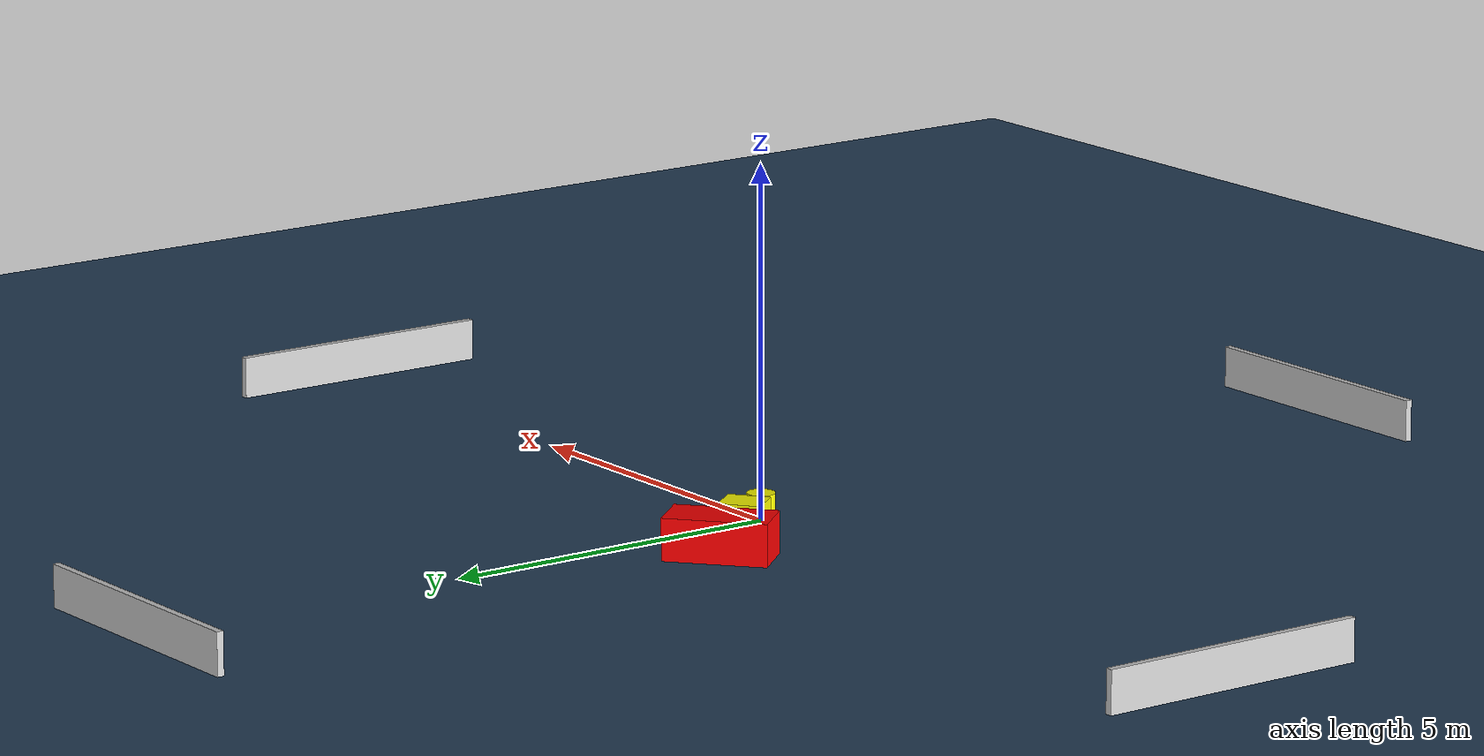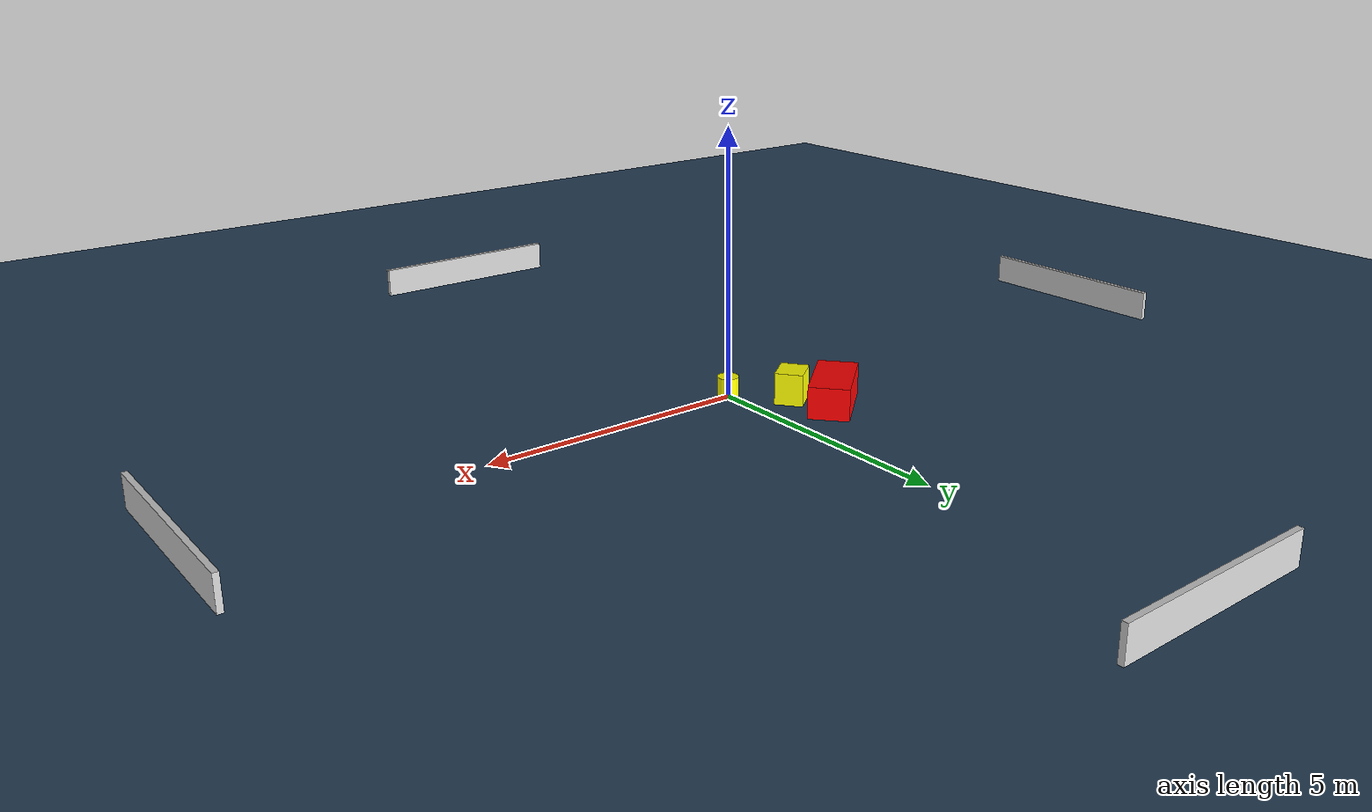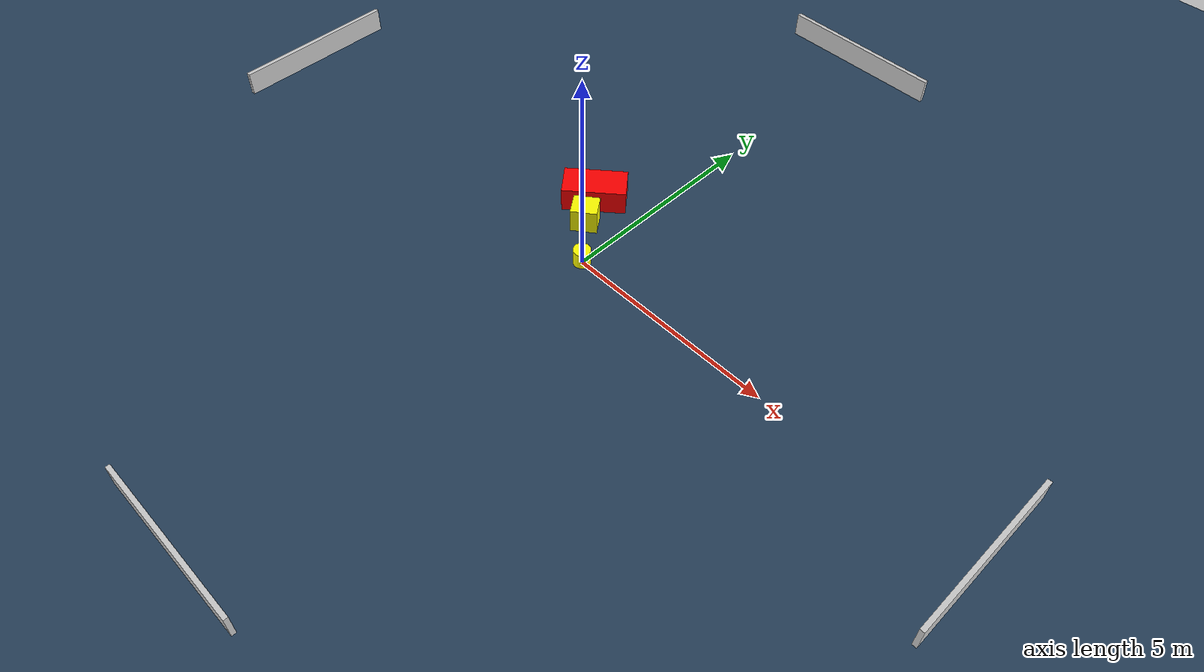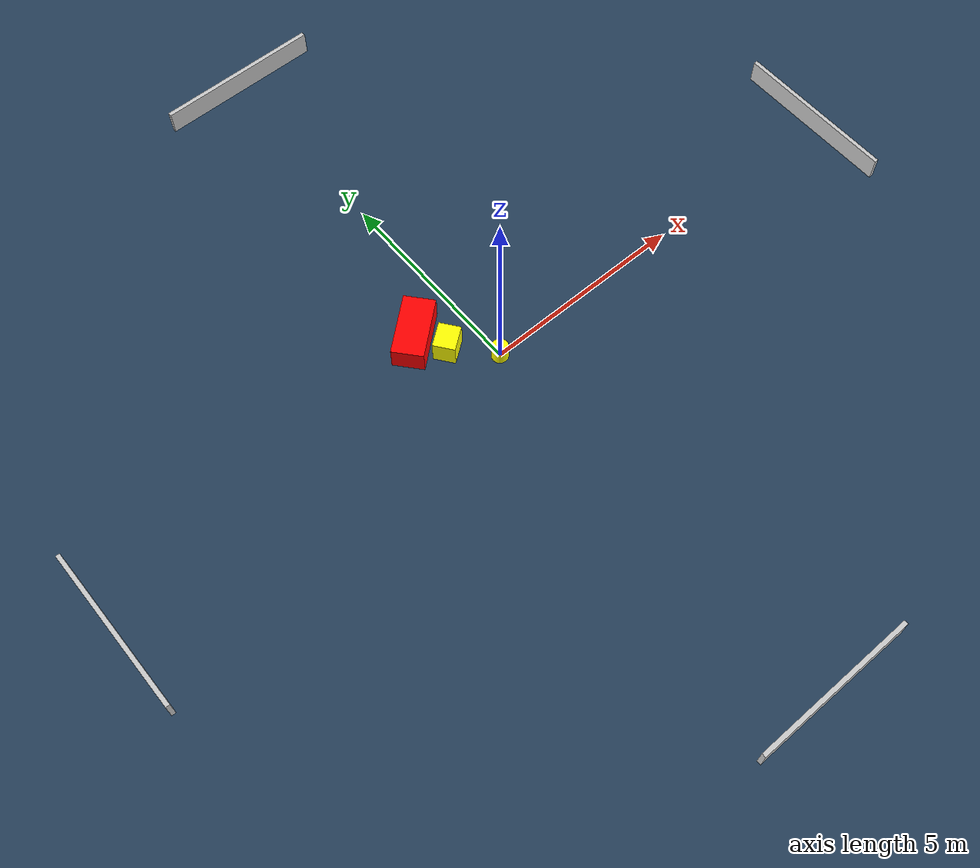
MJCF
<?xml version="1.0" ?>
<mujoco model="generated_environment">
  <option timestep="0.01" integrator="RK4" cone="elliptic"/>
  <default>
    <geom density="1"/>
  </default>
  <asset>
    <texture builtin="gradient" height="3072" name="skybox" rgb1="0.3 0.5 0.7" rgb2="0 0 0" type="skybox" width="512"/>
    <texture builtin="checker" height="300" name="groundplane" rgb1="0.2 0.3 0.4" rgb2="0.1 0.2 0.3" type="2d" width="300"/>
    <material name="groundplane" reflectance="0.2" texrepeat="5 5" texture="groundplane"/>
  </asset>
  <worldbody>
    <light dir="0 0 -1" directional="true" pos="0 0 1.5"/>
    <geom condim="3" friction="0.5 0.005 0.001" material="groundplane" name="floor" pos="0 0 0" size="0 0 0.05" type="plane"/>
    <body name="walls">
      <geom name="wall_1" condim="4" pos="-10.0 0.0 0.3" rgba="0.800000011920929 0.800000011920929 0.800000011920929 1.0" size="0.05 2.0 0.3" type="box"/>
      <geom name="wall_2" condim="4" pos="10.0 0.0 0.3" rgba="0.800000011920929 0.800000011920929 0.800000011920929 1.0" size="0.05 2.0 0.3" type="box"/>
      <geom name="wall_3" condim="4" pos="0.0 -10.0 0.3" rgba="0.800000011920929 0.800000011920929 0.800000011920929 1.0" size="2.0 0.05 0.3" type="box"/>
      <geom name="wall_4" condim="4" pos="0.0 10.0 0.3" rgba="0.800000011920929 0.800000011920929 0.800000011920929 1.0" size="2.0 0.05 0.3" type="box"/>
    </body>
    <body name="robot">
      <joint name="joint_x" type="slide" pos="0 0 0" axis="1 0 0"/>
      <joint name="joint_y" type="slide" pos="0 0 0" axis="0 1 0"/>
      <geom name="robot" type="cylinder" pos="0.0 0.0 0.2" size="0.2 0.2 0.0" mass="5.0" friction="1.0 0.005 0.0001" condim="4" rgba="1.0 1.0 0.0 1.0"/>
    </body>
    <body name="obstacle_1_movable">
      <geom name="obstacle_1_movable" condim="4" pos="-0.7958074306345092 0.8692094567853464 0.3" euler="0 0 36.84129991213855" friction="0.0 0.005 0.001" rgba="1.0 1.0 0.0 1.0" size="0.30067162023540944 0.2616573906438261 0.3" type="box" mass="0.1"/>
      <joint type="free"/>
    </body>
    <body name="obstacle_2_static">
      <geom name="obstacle_2_static" condim="4" pos="-1.1884513277088715 1.5539738691898455 0.3" euler="0 0 130.47888949800114" friction="0.0 0.005 0.001" rgba="1.0 0.0 0.0 1.0" size="0.3744957559564219 0.7314451138490508 0.3" type="box"/>
    </body>
  </worldbody>
  <actuator>
    <motor name="actuator_x" joint="joint_x" gear="1" ctrlrange="-1 1"/>
    <motor name="actuator_y" joint="joint_y" gear="1" ctrlrange="-1 1"/>
  </actuator>
</mujoco>
